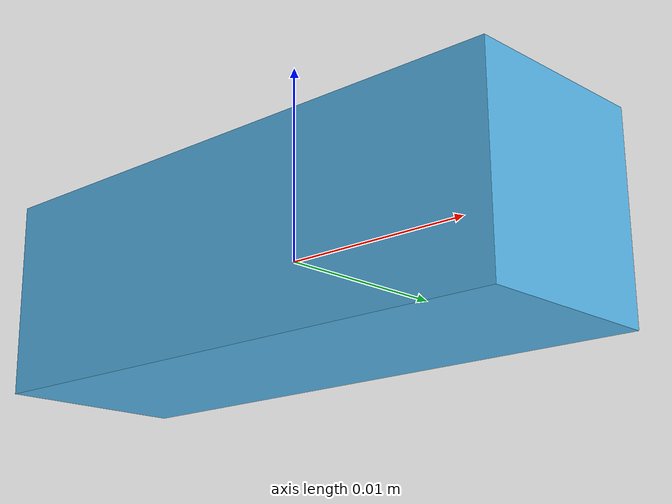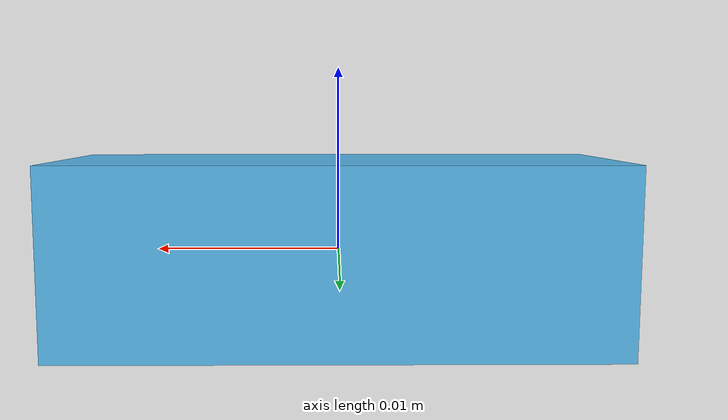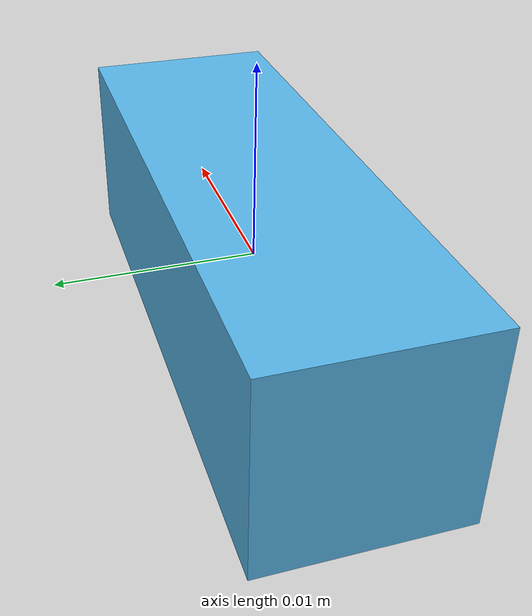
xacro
<?xml version="1.0" ?>
<robot name="simple_camera" xmlns:xacro="http://www.ros.org/wiki/xacro">

  <link name="world">
      <origin xyz="0.0 0.0 0.0"/>
  </link>

  <joint name="camera_joint" type="floating">
      <parent link="world"/>
      <child link="camera_link"/>
      <origin rpy="0.0 0.0 0.0" xyz="0 0.0 0.0"/>
  </joint>

  <link name="camera_link">
    <visual>
      <origin xyz="0 0 0.0" rpy="0 0 0"/>
      <geometry>
        <box size="0.03 0.01 0.01"/>
      </geometry>
    </visual>

    <inertial>
      <mass value="1e-5" />
      <origin xyz="0 0 0" rpy="0 0 0"/>
      <inertia ixx="1e-6" ixy="0" ixz="0" iyy="1e-6" iyz="0" izz="1e-6" />
    </inertial>
  </link>

  <!-- camera simulator plug-in -->
  <gazebo reference="camera_link">
    <sensor type="camera" name="camera">
      <update_rate>30.0</update_rate>
      <camera name="camera">
        <horizontal_fov>0.6</horizontal_fov>
        <image>
          <width>640</width>
          <height>480</height>
          <format>R8G8B8</format>
        </image>
        <clip>
          <near>0.005</near>
          <far>0.9</far>
        </clip>
        <noise>
          <type>gaussian</type>
          <mean>0.0</mean>
          <stddev>0.000</stddev>
        </noise>
      </camera>
      <plugin name="camera_controller" filename="libgazebo_ros_camera.so">
        <alwaysOn>true</alwaysOn>
        <updateRate>0.0</updateRate>
        <cameraName>simple_camera</cameraName>
        <imageTopicName>image_raw</imageTopicName>
        <cameraInfoTopicName>camera_info</cameraInfoTopicName>
        <frameName>camera_link</frameName>
        <distortionK1>0.0</distortionK1>
        <distortionK2>0.0</distortionK2>
        <distortionK3>0.0</distortionK3>
        <distortionT1>0.0</distortionT1>
        <distortionT2>0.0</distortionT2>
      </plugin>
    </sensor>
  </gazebo>

</robot>
